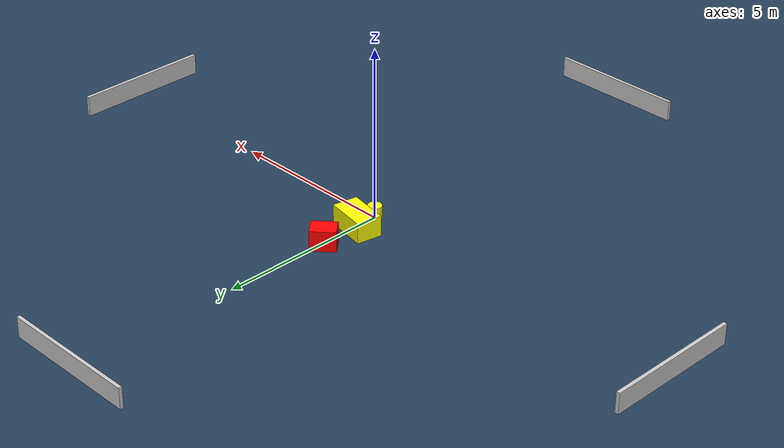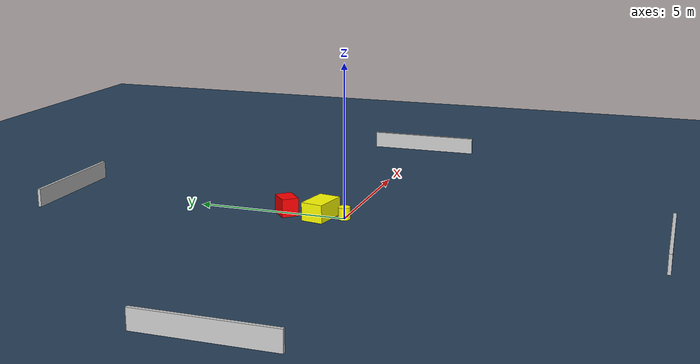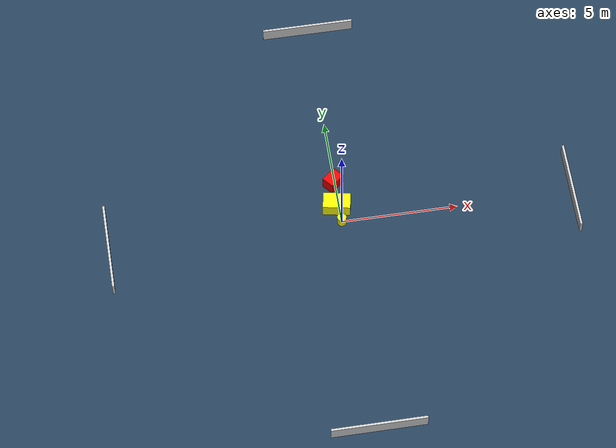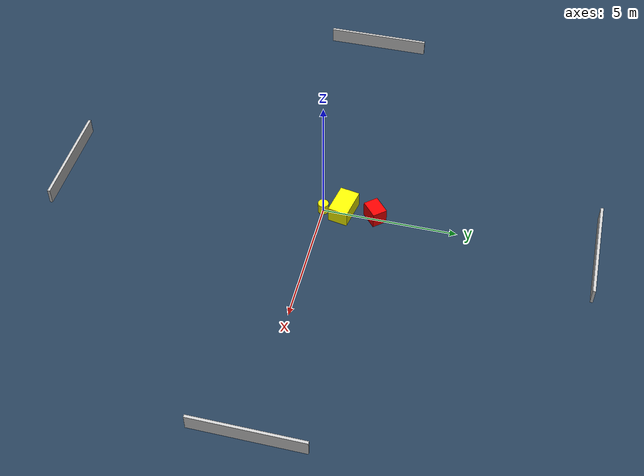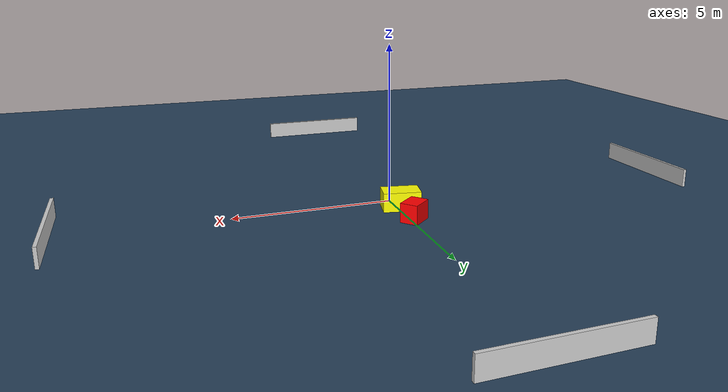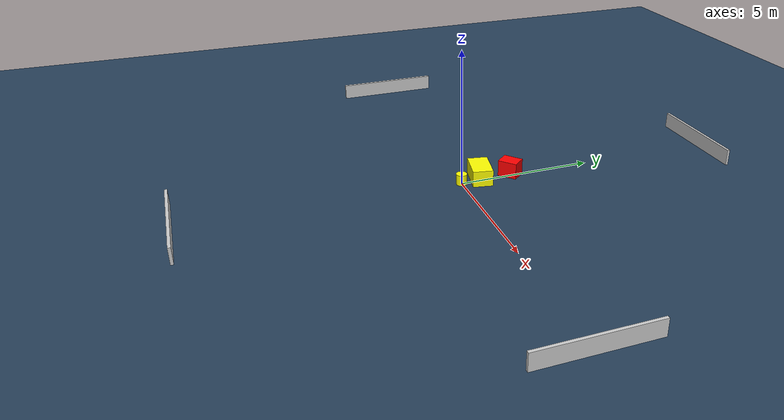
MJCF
<?xml version="1.0" ?>
<mujoco model="generated_environment">
  <option timestep="0.01" integrator="RK4" cone="elliptic"/>
  <default>
    <geom density="1"/>
  </default>
  <asset>
    <texture builtin="gradient" height="3072" name="skybox" rgb1="0.3 0.5 0.7" rgb2="0 0 0" type="skybox" width="512"/>
    <texture builtin="checker" height="300" name="groundplane" rgb1="0.2 0.3 0.4" rgb2="0.1 0.2 0.3" type="2d" width="300"/>
    <material name="groundplane" reflectance="0.2" texrepeat="5 5" texture="groundplane"/>
  </asset>
  <worldbody>
    <light dir="0 0 -1" directional="true" pos="0 0 1.5"/>
    <geom condim="3" friction="0.5 0.005 0.001" material="groundplane" name="floor" pos="0 0 0" size="0 0 0.05" type="plane"/>
    <body name="walls">
      <geom name="wall_1" condim="4" pos="-10.0 0.0 0.3" rgba="0.800000011920929 0.800000011920929 0.800000011920929 1.0" size="0.05 2.0 0.3" type="box"/>
      <geom name="wall_2" condim="4" pos="10.0 0.0 0.3" rgba="0.800000011920929 0.800000011920929 0.800000011920929 1.0" size="0.05 2.0 0.3" type="box"/>
      <geom name="wall_3" condim="4" pos="0.0 -10.0 0.3" rgba="0.800000011920929 0.800000011920929 0.800000011920929 1.0" size="2.0 0.05 0.3" type="box"/>
      <geom name="wall_4" condim="4" pos="0.0 10.0 0.3" rgba="0.800000011920929 0.800000011920929 0.800000011920929 1.0" size="2.0 0.05 0.3" type="box"/>
    </body>
    <body name="robot">
      <joint name="joint_x" type="slide" pos="0 0 0" axis="1 0 0"/>
      <joint name="joint_y" type="slide" pos="0 0 0" axis="0 1 0"/>
      <geom name="robot" type="cylinder" pos="0.0 0.0 0.2" size="0.2 0.2 0.0" mass="5.0" friction="1.0 0.005 0.0001" condim="4" rgba="1.0 1.0 0.0 1.0"/>
    </body>
    <body name="obstacle_1_movable">
      <geom name="obstacle_1_movable" condim="4" pos="-0.10462896149365912 0.7543168201502447 0.3" euler="0 0 79.44182617505234" friction="0.0 0.005 0.001" rgba="1.0 1.0 0.0 1.0" size="0.36814314530794257 0.5889029515043367 0.3" type="box" mass="0.1"/>
      <joint type="free"/>
    </body>
    <body name="obstacle_2_static">
      <geom name="obstacle_2_static" condim="4" pos="-0.08823666994511167 1.9379310541039598 0.3" euler="0 0 40.99219958900117" friction="0.0 0.005 0.001" rgba="1.0 0.0 0.0 1.0" size="0.3619567129236273 0.27738118218897856 0.3" type="box"/>
    </body>
  </worldbody>
  <actuator>
    <motor name="actuator_x" joint="joint_x" gear="1" ctrlrange="-1 1"/>
    <motor name="actuator_y" joint="joint_y" gear="1" ctrlrange="-1 1"/>
  </actuator>
</mujoco>
